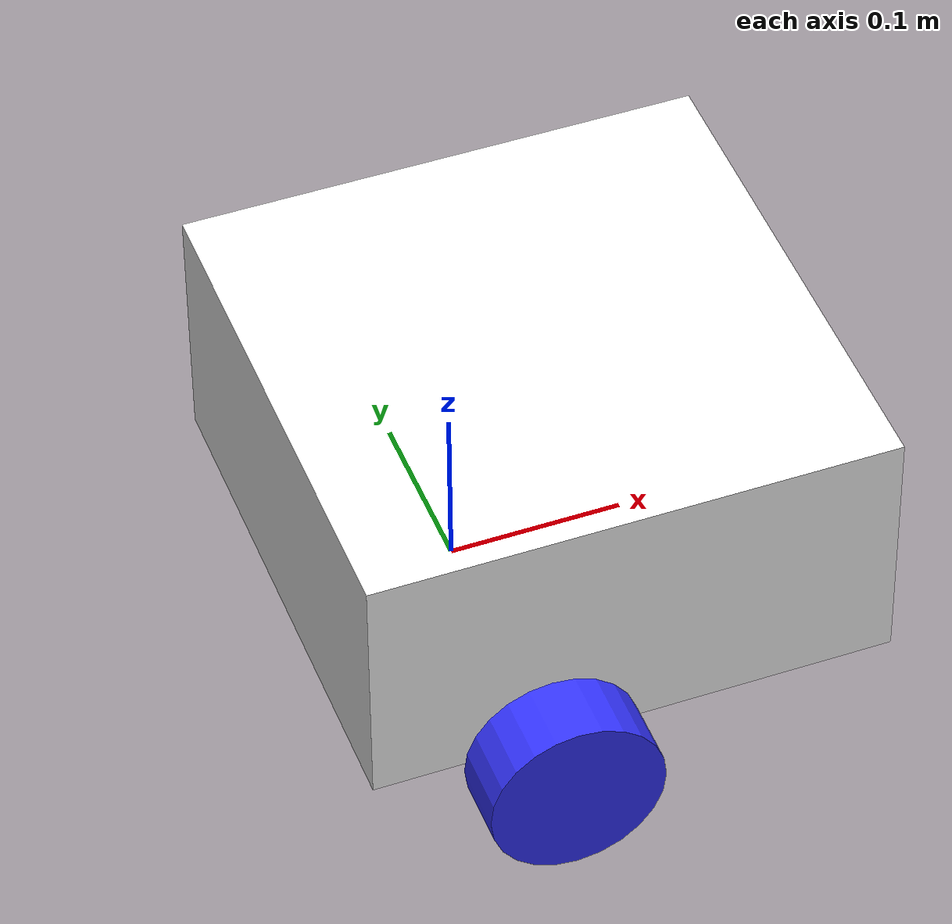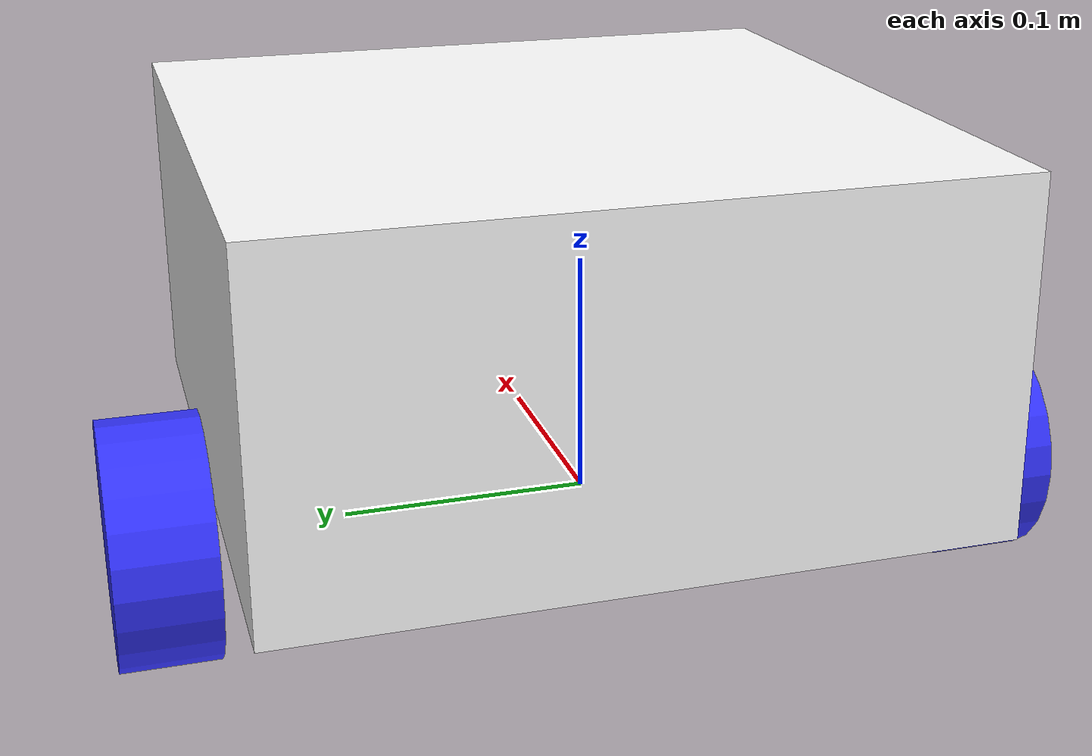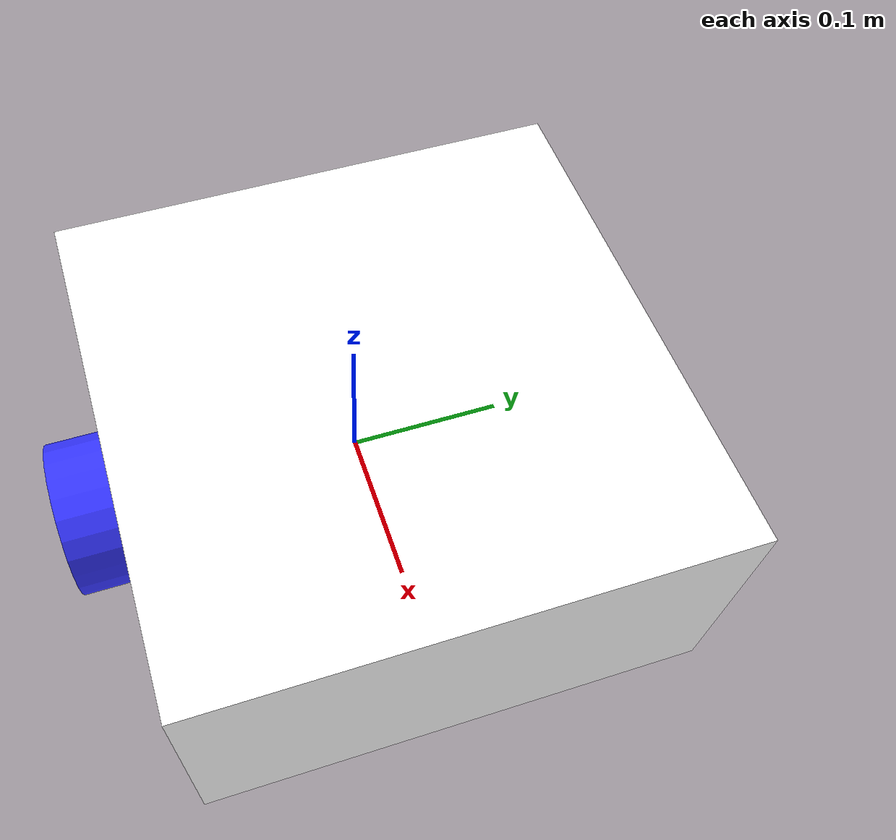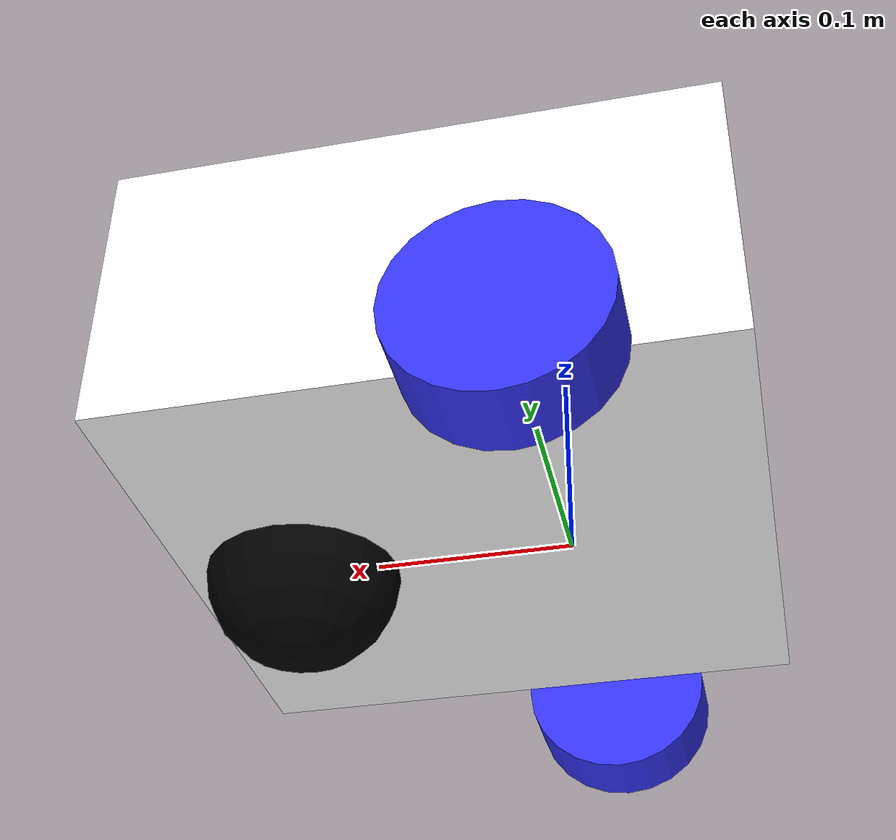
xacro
<?xml version="1.0"?>
<robot xmlns:xacro="http://www.ros.org/wiki/xacro"  name="robot">

        <xacro:include filename="ros2_control.xacro"/>
        <xacro:include filename="robot_core.xacro"/>
        <xacro:include filename="lidar.xacro"/>

</robot>

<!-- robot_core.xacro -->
<robot xmlns:xacro="http://www.ros.org/wiki/xacro">

    <xacro:include filename="inertial_macros.xacro"/>

    <material name="white">
        <color rgba='1 1 1 1' />
    </material>

    <material name="orange">
        <color rgba='1 0.3 0.1 1' />
    </material>
    <material name="blue">
        <color rgba='0.2 0.2 1 1' />
    </material>
    <material name="black">
        <color rgba='0 0 0 1' />
    </material>
    <material name="red">
        <color rgba='1 0 0 1' />
    </material>

    <!--BASE LINK-->

    <link name="base_link">
    </link>

    <!--CHASSIS LINK-->

    <joint name="chassis_joint" type="fixed">
        <parent link="base_link"/>
        <child link="chassis"/>
        <origin xyz="-0.1 0 0"/>
    </joint>
    <link name="chassis">
        <visual>
            <origin xyz="0.15 0 0.075"/>
            <geometry>
                <box size="0.3 0.3 0.15"/>
            </geometry>
            <material name="white"/>
        </visual>
        <collision>
            <origin xyz="0.15 0 0.075"/>
            <geometry>
                <box size="0.3 0.3 0.15"/>
            </geometry>
        </collision>
        <xacro:inertial_box mass="0.5" x="0.3" y="0.3" z="0.15" >
            <origin xyz="0.15 0 0.075" rpy="0 0 0"/>
        </xacro:inertial_box>
    </link>

    <gazebo reference="chassis">
        <material>Gazebo/White</material>
    </gazebo>

    <!--LEFT WHEEL LINK-->

    <joint name="left_wheel_joint" type="continuous">
        <parent link="base_link"/>
        <child link="left_wheel"/>
        <origin xyz="0 0.175 0" rpy="-${pi/2} 0 0"/>
        <axis xyz="0 0 1"/>
    </joint>
    <link name="left_wheel">
        <visual>
            <geometry>
                <cylinder radius="0.05" length="0.04"/>
            </geometry>
            <material name="blue"/>
        </visual>
        <collision>
            <geometry>
                <cylinder radius="0.05" length="0.04"/>
            </geometry>
        </collision>
        <xacro:inertial_cylinder mass="0.1" length="0.04" radius="0.05">
            <origin xyz="0 0 0" rpy="0 0 0"/>
        </xacro:inertial_cylinder>
    </link>

    <gazebo reference="left_wheel">
        <material>Gazebo/Blue</material>
    </gazebo>

    <!--RIGHT WHEEL LINK-->

    <joint name="right_wheel_joint" type="continuous">
        <parent link="base_link"/>
        <child link="right_wheel"/>
        <origin xyz="0 -0.175 0" rpy="${pi/2} 0 0"/>
        <axis xyz="0 0 -1"/>
    </joint>
    <link name="right_wheel">
        <visual>
            <geometry>
                <cylinder radius="0.05" length="0.04"/>
            </geometry>
            <material name="blue"/>
        </visual>
        <collision>
            <geometry>
                <cylinder radius="0.05" length="0.04"/>
            </geometry>
        </collision>
        <xacro:inertial_cylinder mass="0.1" length="0.04" radius="0.05">
            <origin xyz="0 0 0" rpy="0 0 0"/>
        </xacro:inertial_cylinder>
    </link>

    <gazebo reference="right_wheel">
        <material>Gazebo/Blue</material>
    </gazebo>

    <!-- CASTER WHEEL LINK -->

    <joint name="caster_wheel_joint" type="fixed">
        <parent link="chassis"/>
        <child link="caster_wheel"/>
        <origin xyz="0.24 0 0"/>
    </joint>
    <link name="caster_wheel">
        <visual>
            <geometry>
                <sphere radius="0.05"/>
            </geometry>
            <material name="black"/>
        </visual>
        <collision>
            <geometry>
                <sphere radius="0.05"/>
            </geometry>
        </collision>
        <xacro:inertial_sphere mass="0.1" radius="0.05">
            <origin xyz="0 0 0" rpy="0 0 0"/>
        </xacro:inertial_sphere>
    </link>

    <gazebo reference="caster_wheel">
        <material>Gazebo/Black</material>
        <mu1 value="0.001"/>
        <mu2 value="0.001"/>
    </gazebo>

</robot>

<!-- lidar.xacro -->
<robot xmlns:xacro="http://www.ros.org/wiki/xacro"  name="robot">

    <joint name="laser_joint" type="fixed">
        <parent link="chassis"/>
        <child link="laser_frame"/>
        <origin xyz="0.1 0 0.1" rpy="0 0 0"/>
    </joint>

    <link name="laser_frame">
        <visual>
            <geometry>
                <cylinder radius="0.05" length="0.04"/>
            </geometry>
            <material name="red"/>
        </visual>
        <collision>
            <geometry>
                <cylinder radius="0.05" length="0.04"/>
            </geometry>
        </collision>
        <xacro:inertial_cylinder mass="0.1" length="0.04" radius="0.05">
            <origin xyz="0 0 0" rpy="0 0 0"/>
        </xacro:inertial_cylinder>
    </link>

    <gazebo reference="laser_frame">
        <sensor name="laser" type="ray">
            <pose>0 0 0 0 0 0</pose>
            <visualize>true</visualize>
            <update_rate>10</update_rate>
            <ray>
                <scan>
                    <horizontal>
                        <samples>360</samples>
                        <resolution>1</resolution>
                        <min_angle>-3.14</min_angle>
                        <max_angle>3.14</max_angle>
                    </horizontal>
                </scan>
                <range>
                    <min>0.3</min>
                    <max>12</max>
                    <resolution>0.01</resolution>
                </range>
            </ray>
            <plugin name="laser_controller" filename="libgazebo_ros_ray_sensor.so">
                <ros>
                    <argument>~/out:=scan</argument>
                </ros>
                <output_type>sensor_msgs/LaserScan</output_type>
                <frame_name>laser_frame</frame_name>
            </plugin>
        </sensor>
    </gazebo>

    <!--IMU Sensor-->

      <joint name="imu_joint" type="fixed">
        <parent link="base_link"/>
        <child link="imu_link"/>
        <origin xyz="0.1 0 0.1"/>
    </joint>

    <link name="imu_link">
        <visual>
            <geometry>
            <box size="0.05 0.05 0.01"/>
            </geometry>
        </visual>

        <collision>
            <geometry>
            <box size="0.05 0.05 0.01"/>
            </geometry>
        </collision>
        <xacro:inertial_box mass="0.01" x="0.05" y="0.05" z="0.01">
            <origin xyz="0.1 0 0.1" rpy="0 0 0"/>
        </xacro:inertial_box>

    </link>

    <gazebo reference="imu_link">
        <sensor name="imu_sensor" type="imu">
            <plugin filename="libgazebo_ros_imu_sensor.so" name="imu_plugin">
                <ros>
                    <namespace>/demo</namespace>
                    <remapping>~/out:=imu</remapping>
                </ros>
                <initial_orientation_as_reference>false</initial_orientation_as_reference>
            </plugin>
            <always_on>true</always_on>
            <update_rate>100</update_rate>
            <visualize>true</visualize>
            <imu>
                <angular_velocity>
                    <x>
                        <noise type="gaussian">
                            <mean>0.0</mean>
                            <stddev>2e-4</stddev>
                            <bias_mean>0.0000075</bias_mean>
                            <bias_stddev>0.0000008</bias_stddev>
                        </noise>
                    </x>
                    <y>
                        <noise type="gaussian">
                            <mean>0.0</mean>
                            <stddev>2e-4</stddev>
                            <bias_mean>0.0000075</bias_mean>
                            <bias_stddev>0.0000008</bias_stddev>
                        </noise>
                    </y>
                    <z>
                        <noise type="gaussian">
                            <mean>0.0</mean>
                            <stddev>2e-4</stddev>
                            <bias_mean>0.0000075</bias_mean>
                            <bias_stddev>0.0000008</bias_stddev>
                        </noise>
                    </z>
                </angular_velocity>
                <linear_acceleration>
                    <x>
                        <noise type="gaussian">
                            <mean>0.0</mean>
                            <stddev>1.7e-2</stddev>
                            <bias_mean>0.1</bias_mean>
                            <bias_stddev>0.001</bias_stddev>
                        </noise>
                    </x>
                    <y>
                        <noise type="gaussian">
                            <mean>0.0</mean>
                            <stddev>1.7e-2</stddev>
                            <bias_mean>0.1</bias_mean>
                            <bias_stddev>0.001</bias_stddev>
                        </noise>
                    </y>
                    <z>
                        <noise type="gaussian">
                            <mean>0.0</mean>
                            <stddev>1.7e-2</stddev>
                            <bias_mean>0.1</bias_mean>
                            <bias_stddev>0.001</bias_stddev>
                        </noise>
                    </z>
                </linear_acceleration>
            </imu>
        </sensor>
    </gazebo>

</robot>
